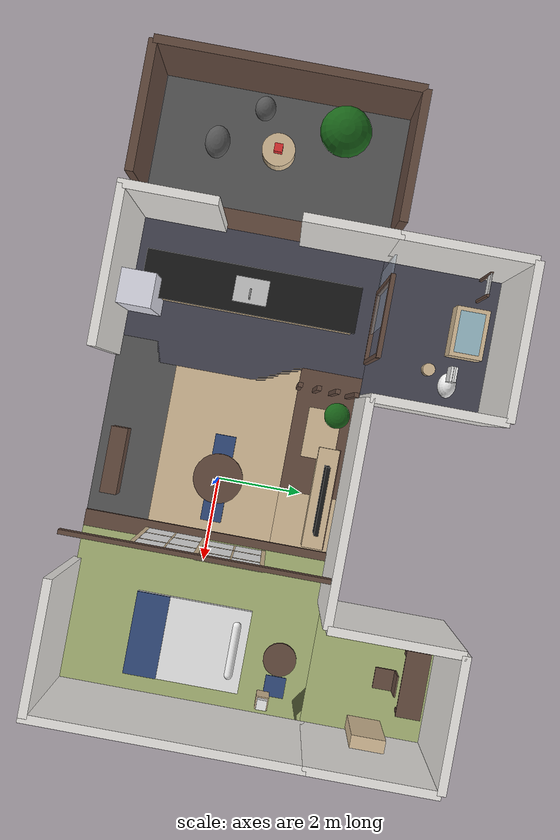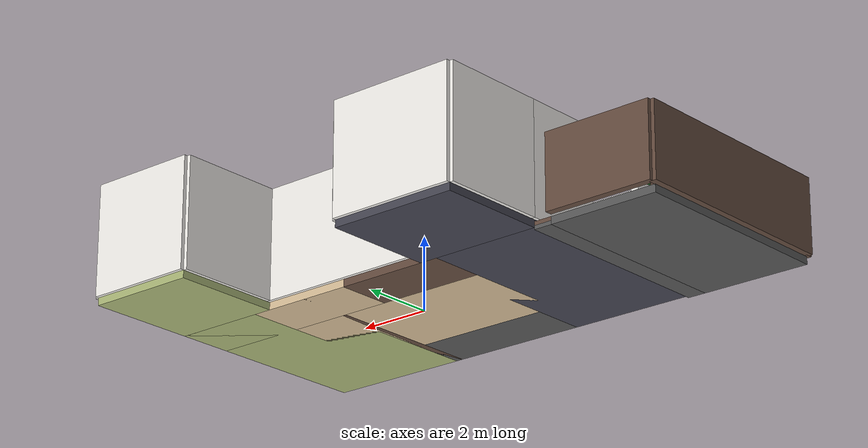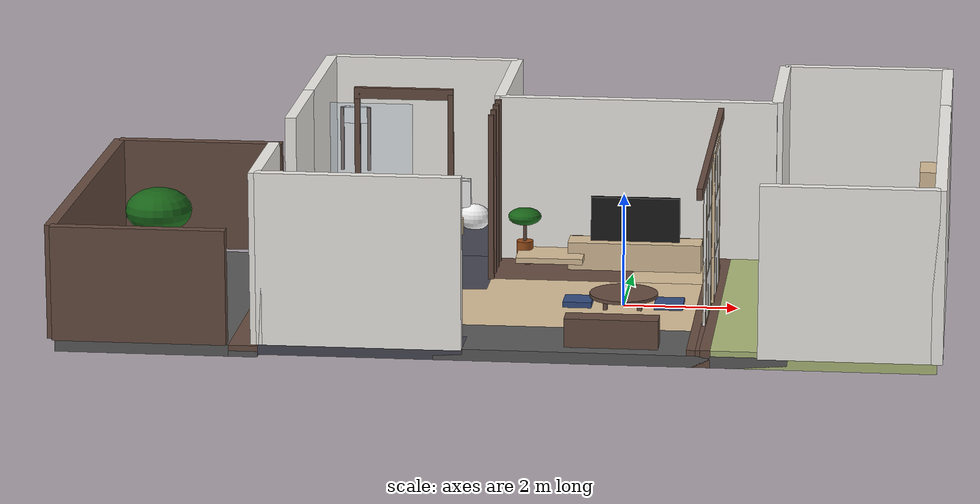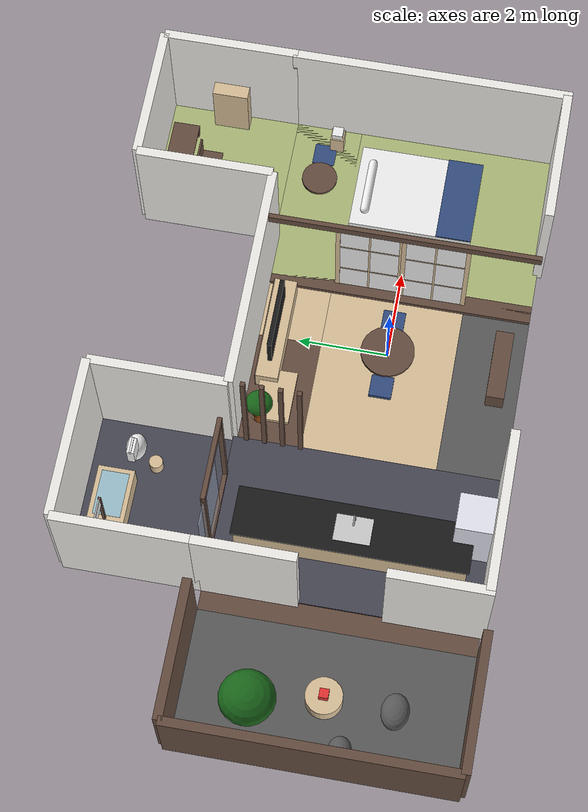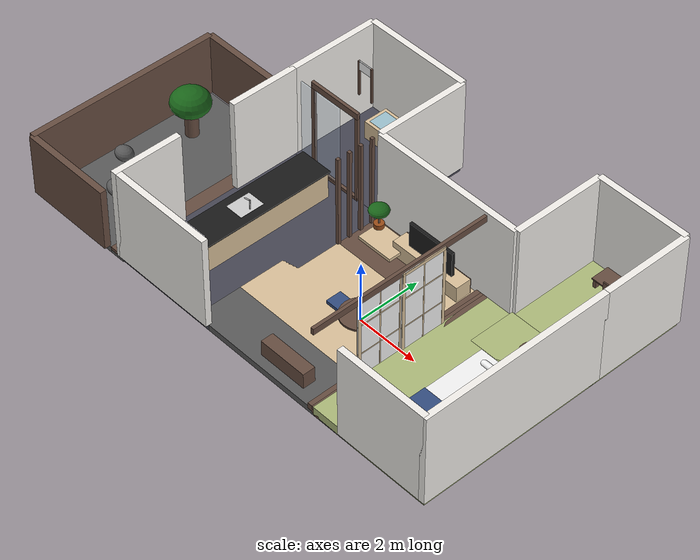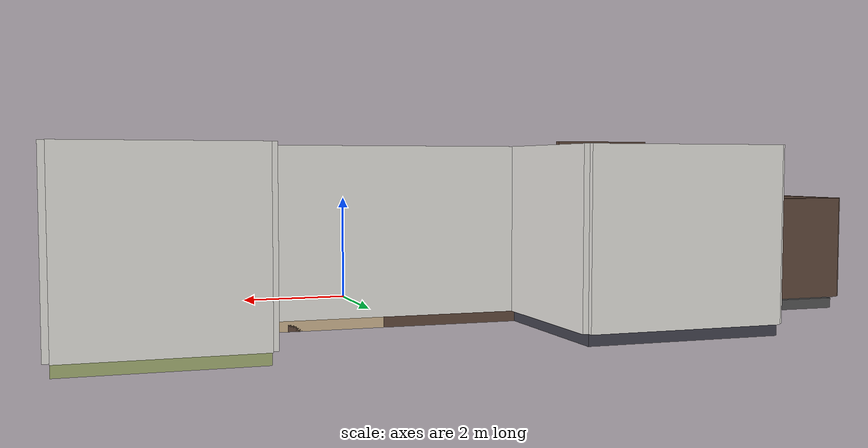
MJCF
<mujoco model="Japanese_Zen_Home">
  <!--
    Designed by: Trae AI
    Style: Modern Japanese (Zen)
    Rooms: Living Room, Kitchen, Bedroom
  -->

  <compiler angle="degree" coordinate="local" inertiafromgeom="true"/>

  <option timestep="0.005" gravity="0 0 -9.81" density="1.2"/>

  <visual>
    <global offwidth="1920" offheight="1080" azimuth="150" elevation="-20"/>
    <quality shadowsize="4096"/>
    <headlight active="0"/>
    <map fogstart="3" fogend="10" force="0.1" znear="0.1"/>
  </visual>

  <default>
    <geom condim="3" friction="0.7 0.1 0.1" solimp="0.9 0.95 0.001" solref="0.02 1"/>
  </default>

  <asset>
    <!-- Textures: Procedural generation for standalone capability -->
    <texture name="tex_sky" type="skybox" builtin="gradient" rgb1="0.8 0.9 1.0" rgb2="0.6 0.8 0.9" width="512" height="512"/>

    <!-- Wood Texture (Light Oak) -->
    <texture name="tex_wood_light" type="cube" builtin="flat" rgb1="0.85 0.75 0.6" width="512" height="512" mark="random" markrgb="0.8 0.7 0.55"/>
    <material name="mat_wood_light" texture="tex_wood_light" texrepeat="1 1" reflectance="0.3" specular="0.2"/>

    <!-- Wood Texture (Dark Walnut) -->
    <texture name="tex_wood_dark" type="cube" builtin="flat" rgb1="0.4 0.3 0.25" width="512" height="512" mark="cross" markrgb="0.35 0.25 0.2"/>
    <material name="mat_wood_dark" texture="tex_wood_dark" texrepeat="1 1" reflectance="0.2" specular="0.1"/>

    <!-- Tatami Texture -->
    <texture name="tex_tatami" type="2d" builtin="checker" rgb1="0.7 0.75 0.5" rgb2="0.65 0.7 0.45" width="512" height="512"/>
    <material name="mat_tatami" texture="tex_tatami" texrepeat="5 5" reflectance="0.1" specular="0.0"/>

    <!-- Wall Texture (Plaster) -->
    <texture name="tex_wall" type="2d" builtin="flat" rgb1="0.95 0.94 0.92" width="512" height="512"/>
    <material name="mat_wall" texture="tex_wall" reflectance="0.1" specular="0.05"/>

    <!-- Floor Tile (Kitchen) -->
    <texture name="tex_tile" type="2d" builtin="checker" rgb1="0.3 0.3 0.35" rgb2="0.25 0.25 0.3" width="512" height="512"/>
    <material name="mat_tile" texture="tex_tile" texrepeat="4 4" reflectance="0.4" specular="0.5"/>
    <texture name="tex_stone_entry" type="2d" builtin="checker" rgb1="0.4 0.4 0.4" rgb2="0.3 0.3 0.3" width="512" height="512"/>
    <material name="mat_stone_entry" texture="tex_stone_entry" texrepeat="4 4" reflectance="0.2" specular="0.1"/>

    <!-- Shoji Paper -->
    <material name="mat_shoji" rgba="0.95 0.95 0.95 0.9" reflectance="0.1" specular="0.1"/>

    <!-- Fabric (Blue) -->
    <material name="mat_fabric_blue" rgba="0.2 0.3 0.5 1" reflectance="0.05" specular="0.0"/>

    <!-- Fabric (White/Bed) -->
    <material name="mat_fabric_white" rgba="0.95 0.95 0.95 1" reflectance="0.1" specular="0.0"/>

    <!-- Plant Green -->
    <material name="mat_plant" rgba="0.1 0.4 0.1 1" reflectance="0.1" specular="0.2"/>
  </asset>

  <worldbody>
    <!-- Lighting -->
    <light mode="targetbodycom" target="living_center" directional="true" pos="-5 -5 10" diffuse="0.9 0.85 0.8" specular="0.2 0.2 0.2" castshadow="true"/>
    <light mode="fixed" pos="2 2 3" diffuse="0.4 0.4 0.3" attenuation="1 0 0"/>
    <light name="top_light" mode="targetbodycom" target="living_center" directional="true" pos="0 0 8" diffuse="0.8 0.8 0.8" specular="0.2 0.2 0.2" castshadow="true"/>

    <!-- ================= FLOOR PLAN ================= -->
    <!-- Total Area approx 10m x 8m -->

    <!-- Living Room Floor (Wood) - Center -->
    <geom name="floor_living" type="box" pos="0 0 -0.1" size="3 1.5 0.1" material="mat_wood_light"/>
    <body name="living_center" pos="0 0 0"/>
    <geom name="floor_entry" type="box" pos="0 -2.25 -0.1" size="3 0.75 0.1" material="mat_stone_entry"/>
    <!-- Dining & TV Area Connection -->
    <geom name="floor_dining" type="box" pos="-1.5 2.25 -0.1" size="1.5 0.75 0.1" material="mat_wood_dark"/>
    <geom name="floor_center_north" type="box" pos="1.5 2.25 -0.1" size="1.5 0.75 0.1" material="mat_wood_light"/>

    <!-- New Room: Bathroom Floor (North-West) -->
    <geom name="floor_bathroom" type="box" pos="-4.25 4.5 -0.1" size="1.75 1.5 0.1" material="mat_tile"/>

    <!-- New Room: Study Floor (North-East) -->
    <geom name="floor_study" type="box" pos="4 4.5 -0.05" size="1.5 1.5 0.15" material="mat_tatami"/>

    <!-- Tearoom (Small raised area) -->
    <geom name="floor_tearoom" type="box" pos="4 2.25 -0.05" size="1.5 0.75 0.15" material="mat_tatami"/>

    <!-- Kitchen Floor (Tile) - Extended Left -->
    <!-- Original: pos="-4 0 -0.1" size="1.5 3 0.1" (Range: -5.5 to -2.5) -->
    <!-- New: Extend left by 0.5m. New Left Edge: -6.0. Range: -6.0 to -2.5. Width: 3.5. Center: -4.25. Size: 1.75 -->
    <geom name="floor_kitchen" type="box" pos="-4.25 0 -0.1" size="1.75 3 0.1" material="mat_tile"/>

    <!-- Corridor (Veranda/Engawa) - Shifted Left and Lowered -->
    <!-- Left edge of kitchen is now -6.0. Corridor starts there. -->
    <!-- Width 0.5m. Center: -6.0 - 0.25 = -6.25. -->
    <!-- Lowered height: Kitchen top is 0. Corridor top should be slightly lower, say -0.05. -->
    <!-- Box height 0.05. Center Z = -0.05 - 0.05 = -0.1. Top surface at -0.05. -->
    <geom name="floor_corridor" type="box" pos="-6.25 0 -0.1" size="0.25 3 0.05" material="mat_wood_dark"/>
    <!-- Base under corridor (Ground) -->
    <!-- To fill the gap below the corridor to the ground level or create a step effect. -->
    <geom name="floor_corridor_base" type="box" pos="-6.25 0 -0.2" size="0.25 3 0.05" material="mat_stone_entry"/>

    <!-- Courtyard Floor - Shifted Left -->
    <!-- Start at corridor edge -6.5. -->
    <!-- Pos: -8.0, Size: 1.5 (Width 3.0, Range -6.5 to -9.5) -->
    <geom name="floor_courtyard" type="box" pos="-8.0 0 -0.15" size="1.5 3 0.1" material="mat_stone_entry"/>

    <!-- Bedroom Floor (Tatami Platform) - Right side, slightly raised -->
    <geom name="floor_bedroom" type="box" pos="3.5 0 -0.05" size="2 3 0.15" material="mat_tatami"/>
    <!-- Bedroom Step -->
    <geom name="bedroom_step" type="box" pos="1.5 0 -0.05" size="0.2 3 0.15" material="mat_wood_dark"/>

    <!-- ================= WALLS ================= -->
    <!-- Back Wall (Center Segment behind TV) -->
    <!-- This creates openings at the sides for the Bathroom (Left) and Study (Right) -->
    <geom name="wall_back_center" type="box" pos="0 3 1.5" size="2.5 0.1 1.5" material="mat_wall"/>

    <!-- Bathroom Walls (North-West Room) -->
    <geom name="wall_bath_back" type="box" pos="-4.25 6 1.5" size="1.75 0.1 1.5" material="mat_wall"/>
    <!-- Adjusted Left Wall position to match extended Kitchen -->
    <geom name="wall_bath_left" type="box" pos="-6.0 4.5 1.5" size="0.1 1.5 1.5" material="mat_wall"/>
    <geom name="wall_bath_right" type="box" pos="-2.5 4.5 1.5" size="0.1 1.5 1.5" material="mat_wall"/>

    <!-- Study Walls (North-East Room) -->
    <geom name="wall_study_back" type="box" pos="4 6 1.5" size="1.5 0.1 1.5" material="mat_wall"/>
    <geom name="wall_study_right" type="box" pos="5.5 4.5 1.5" size="0.1 1.5 1.5" material="mat_wall"/>
    <geom name="wall_study_left" type="box" pos="2.5 4.5 1.5" size="0.1 1.5 1.5" material="mat_wall"/>

    <!-- Front Wall (with opening for view) -->
    <geom name="wall_front_left" type="box" pos="-4.25 -3 1.5" size="1.75 0.1 1.5" material="mat_wall"/>
    <geom name="wall_front_right" type="box" pos="4 -3 1.5" size="1.5 0.1 1.5" material="mat_wall"/>
    <!-- Left Wall - Shifted Left -->
    <geom name="wall_left_south" type="box" pos="-6.0 -2 1.5" size="0.1 1.1 1.5" material="mat_wall"/>
    <geom name="wall_left_north" type="box" pos="-6.0 2 1.5" size="0.1 1.1 1.5" material="mat_wall"/>
    <!-- Right Wall -->
    <geom name="wall_right" type="box" pos="5.5 0 1.5" size="0.1 3.1 1.5" material="mat_wall"/>
    <!-- Courtyard Walls - Adjusted -->
    <geom name="wall_courtyard_back" type="box" pos="-8.0 3.1 1.0" size="1.5 0.1 1.0" material="mat_wood_dark"/>
    <geom name="wall_courtyard_front" type="box" pos="-8.0 -3.1 1.0" size="1.5 0.1 1.0" material="mat_wood_dark"/>
    <geom name="wall_courtyard_left" type="box" pos="-9.5 0 1.0" size="0.1 3.1 1.0" material="mat_wood_dark"/>

    <!-- Doorways / Openings -->
    <!-- Openings to Bathroom and Study are created by the gap between wall_back_center and the side walls -->

    <!-- ================= PARTITIONS ================= -->

    <!-- Shoji Screen (Divider between Living and Bedroom) -->
    <!-- Frame -->
    <body name="shoji_divider" pos="1.5 0 0">
        <!-- Top Track -->
        <geom type="box" pos="0 0 2.8" size="0.05 3 0.1" material="mat_wood_dark"/>
        <!-- Bottom Track -->
        <geom type="box" pos="0 0 0.05" size="0.05 3 0.05" material="mat_wood_dark"/>

        <!-- Sliding Door 1 (Fixed for visual) -->
        <body name="shoji_door_1" pos="0 -0.75 1.4">
            <geom type="box" size="0.02 0.75 1.4" material="mat_shoji"/>
            <geom type="box" size="0.03 0.75 0.05" pos="0 0 1.35" material="mat_wood_light"/> <!-- Top frame -->
            <geom type="box" size="0.03 0.75 0.05" pos="0 0 -1.35" material="mat_wood_light"/> <!-- Bottom frame -->
            <geom type="box" size="0.03 0.05 1.4" pos="0 0.7 0" material="mat_wood_light"/> <!-- Side frame -->
            <geom type="box" size="0.03 0.05 1.4" pos="0 -0.7 0" material="mat_wood_light"/> <!-- Side frame -->
            <!-- Grid lines -->
            <geom type="box" size="0.025 0.75 0.02" pos="0 0 0.5" material="mat_wood_light"/>
            <geom type="box" size="0.025 0.75 0.02" pos="0 0 -0.5" material="mat_wood_light"/>
            <geom type="box" size="0.025 0.02 1.4" pos="0 0 0" material="mat_wood_light"/>
        </body>

        <!-- Sliding Door 2 (Open) -->
        <body name="shoji_door_2" pos="0.05 0.7 1.4">
            <geom type="box" size="0.02 0.75 1.4" material="mat_shoji"/>
             <geom type="box" size="0.03 0.75 0.05" pos="0 0 1.35" material="mat_wood_light"/>
            <geom type="box" size="0.03 0.75 0.05" pos="0 0 -1.35" material="mat_wood_light"/>
            <geom type="box" size="0.03 0.05 1.4" pos="0 0.7 0" material="mat_wood_light"/>
            <geom type="box" size="0.03 0.05 1.4" pos="0 -0.7 0" material="mat_wood_light"/>
            <!-- Grid lines -->
            <geom type="box" size="0.025 0.75 0.02" pos="0 0 0.5" material="mat_wood_light"/>
            <geom type="box" size="0.025 0.75 0.02" pos="0 0 -0.5" material="mat_wood_light"/>
            <geom type="box" size="0.025 0.02 1.4" pos="0 0 0" material="mat_wood_light"/>
        </body>
    </body>

    <!-- Kitchen Divider (Vertical Slats) -->
    <body name="kitchen_divider" pos="-2.5 1.5 0">
        <geom type="box" pos="0 0 1.5" size="0.05 0.05 1.5" material="mat_wood_dark"/>
        <geom type="box" pos="0 0.4 1.5" size="0.05 0.05 1.5" material="mat_wood_dark"/>
        <geom type="box" pos="0 0.8 1.5" size="0.05 0.05 1.5" material="mat_wood_dark"/>
        <geom type="box" pos="0 1.2 1.5" size="0.05 0.05 1.5" material="mat_wood_dark"/>
    </body>

    <!-- ================= FURNITURE: LIVING ROOM ================= -->

    <!-- Chabudai (Low Table) -->
    <body name="table" pos="0 0 0.2">
        <!-- Table Top -->
        <geom type="cylinder" size="0.6 0.03" material="mat_wood_dark"/>
        <!-- Legs -->
        <geom type="box" pos="0.3 0.3 -0.1" size="0.04 0.04 0.1" material="mat_wood_dark"/>
        <geom type="box" pos="-0.3 0.3 -0.1" size="0.04 0.04 0.1" material="mat_wood_dark"/>
        <geom type="box" pos="0.3 -0.3 -0.1" size="0.04 0.04 0.1" material="mat_wood_dark"/>
        <geom type="box" pos="-0.3 -0.3 -0.1" size="0.04 0.04 0.1" material="mat_wood_dark"/>
    </body>

    <!-- Zabuton (Cushions) -->
    <body name="cushion_1" pos="0.8 0 0.05">
        <geom type="box" size="0.25 0.25 0.05" material="mat_fabric_blue" rgba="0.2 0.3 0.5 1"/>
    </body>
    <body name="cushion_2" pos="-0.8 0 0.05">
        <geom type="box" size="0.25 0.25 0.05" material="mat_fabric_blue" rgba="0.2 0.3 0.5 1"/>
    </body>

    <!-- TV Stand / Low Cabinet -->
    <body name="cabinet" pos="0 2.5 0.25">
        <geom type="box" size="1.2 0.25 0.25" material="mat_wood_light"/>
        <geom type="box" pos="0 0.26 0" size="1.2 0.01 0.25" material="mat_wood_dark"/> <!-- Top surface -->

        <!-- TV (Black box) -->
        <geom type="box" pos="0 0 0.6" size="0.8 0.05 0.45" rgba="0.1 0.1 0.1 1" material="mat_wood_dark"/>
    </body>

    <body name="plant" pos="-2 2.5 0.3">
        <geom type="cylinder" size="0.15 0.15" rgba="0.6 0.3 0.1 1"/>
        <geom type="capsule" fromto="0 0 0.1 0 0 0.6" size="0.03" material="mat_wood_dark"/>
        <geom type="ellipsoid" pos="0 0 0.6" size="0.3 0.3 0.15" material="mat_plant"/>
    </body>
    <body name="courtyard_tree" pos="-8.5 1.5 0.3">
        <geom type="cylinder" size="0.2 0.4" material="mat_wood_dark"/>
        <geom type="ellipsoid" pos="0 0 0.8" size="0.6 0.6 0.4" material="mat_plant"/>
    </body>
    <body name="courtyard_rock_1" pos="-8.0 -1.5 0.1">
        <geom type="ellipsoid" size="0.4 0.3 0.2" material="mat_stone_entry"/>
    </body>
    <body name="courtyard_rock_2" pos="-9.0 -0.5 0.1">
        <geom type="ellipsoid" size="0.3 0.25 0.2" material="mat_stone_entry"/>
    </body>

    <!-- Courtyard Furniture -->
    <body name="courtyard_table" pos="-8.0 0 0.2">
        <!-- Simple Stone/Wood Table -->
        <geom type="cylinder" size="0.4 0.2" material="mat_wood_light"/>
    </body>

    <!-- Interactive Block (with free joint) -->
    <body name="toy_block" pos="-8.0 0 0.5">
        <freejoint/>
        <geom type="box" size="0.1 0.1 0.1" rgba="0.9 0.2 0.2 1" mass="1"/>
    </body>

    <body name="entry_cabinet" pos="0 -2.5 0.25">
        <geom type="box" size="0.8 0.2 0.25" material="mat_wood_dark"/>
    </body>

    <body name="dining_table" pos="-1.5 2.25 0.25">
        <geom type="box" size="0.6 0.4 0.05" material="mat_wood_light"/>
        <geom type="box" pos="0.45 0.3 -0.2" size="0.05 0.05 0.2" material="mat_wood_dark"/>
        <geom type="box" pos="-0.45 0.3 -0.2" size="0.05 0.05 0.2" material="mat_wood_dark"/>
    </body>

    <body name="tearoom_table" pos="4 2.25 0.25">
        <geom type="cylinder" size="0.4 0.03" material="mat_wood_dark"/>
    </body>

    <body name="tearoom_cushion" pos="4.7 2.25 0.07">
        <geom type="box" size="0.25 0.25 0.05" material="mat_fabric_blue"/>
    </body>

    <!-- ================= FURNITURE: KITCHEN ================= -->
    <body name="kitchen_counter" pos="-4.5 0 0.45">
        <!-- Main Counter -->
        <geom type="box" size="0.5 2.5 0.45" material="mat_wood_light"/>
        <!-- Countertop (Black Granite style) -->
        <geom type="box" pos="0 0 0.46" size="0.55 2.55 0.02" rgba="0.1 0.1 0.1 1" material="mat_tile"/>

        <!-- Sink (Hollow approximation) -->
        <geom type="box" pos="0 0 0.48" size="0.3 0.4 0.01" rgba="0.8 0.8 0.8 1"/>

        <!-- Faucet -->
        <geom type="capsule" fromto="0.2 0 0.5 0.2 0 0.8" size="0.02" rgba="0.7 0.7 0.7 1"/>
        <geom type="capsule" fromto="0.2 0 0.8 0 0 0.75" size="0.02" rgba="0.7 0.7 0.7 1"/>
    </body>

    <body name="fridge" pos="-4 -2.5 0.9">
        <geom type="box" size="0.4 0.4 0.9" rgba="0.9 0.9 0.95 1" material="mat_wall"/>
    </body>

    <!-- ================= FURNITURE: BEDROOM ================= -->
    <body name="futon_bed" pos="4 0 0.15">
        <!-- Mattress -->
        <geom type="box" size="1.0 1.4 0.08" material="mat_fabric_white"/>
        <!-- Pillow -->
        <geom type="capsule" fromto="-0.6 1.1 0.08 0.6 1.1 0.08" size="0.1" material="mat_fabric_white"/>
        <!-- Blanket (Folded at end) -->
        <geom type="box" pos="0 -1.0 0.09" size="1.0 0.4 0.02" material="mat_fabric_blue"/>
    </body>

    <body name="bedroom_lamp" pos="5 2 0.3">
         <!-- Stand -->
         <geom type="box" size="0.15 0.15 0.3" material="mat_wood_light"/>
         <!-- Paper shade -->
         <geom type="box" pos="0 0 0.2" size="0.12 0.12 0.25" material="mat_shoji"/>
         <!-- Light source inside lamp -->
         <light mode="fixed" pos="0 0 0" diffuse="0.8 0.7 0.4" attenuation="2 0 0"/>
    </body>

    <!-- ================= FURNITURE: BATHROOM ================= -->
    <body name="bathtub" pos="-4.5 5.25 0.3">
        <!-- Japanese Cypress Bath (Hinoki) -->
        <geom type="box" size="0.6 0.4 0.3" material="mat_wood_light"/>
        <geom type="box" pos="0 0 0.25" size="0.5 0.3 0.06" rgba="0.6 0.8 0.9 0.8"/> <!-- Water -->
    </body>
    <body name="bath_stool" pos="-3.5 4.5 0.15">
        <geom type="cylinder" size="0.15 0.15" material="mat_wood_light"/>
    </body>
    <body name="towel_rack" pos="-5.7 5.2 1.0">
        <geom type="box" pos="0 0 0.6" size="0.03 0.03 0.6" material="mat_wood_dark"/>
        <geom type="box" pos="0.5 0 0.6" size="0.03 0.03 0.6" material="mat_wood_dark"/>
        <geom type="capsule" fromto="0.05 0 1.2 0.45 0 1.2" size="0.02" rgba="0.8 0.8 0.8 1"/>
        <geom type="box" pos="0.25 0 1.05" size="0.25 0.02 0.15" material="mat_fabric_white"/>
    </body>
    <body name="toilet" pos="-3.2 5.0 0.2">
        <geom type="ellipsoid" size="0.3 0.22 0.25" rgba="0.95 0.95 0.95 1"/>
        <geom type="box" pos="-0.25 0 0.45" size="0.18 0.08 0.25" rgba="0.95 0.95 0.95 1"/>
        <geom type="box" pos="-0.25 0 0.7" size="0.18 0.02 0.04" rgba="0.95 0.95 0.95 1"/>
    </body>
    <body name="bath_kitchen_partition" pos="-4.25 3.0 0">
        <geom type="box" pos="-0.85 0 1.5" size="0.05 0.05 1.5" material="mat_wood_dark"/>
        <geom type="box" pos="0.85 0 1.5" size="0.05 0.05 1.5" material="mat_wood_dark"/>
        <geom type="box" pos="0 0 3.0" size="0.9 0.05 0.1" material="mat_wood_dark"/>
        <geom type="box" pos="0 0 0.05" size="0.9 0.05 0.05" material="mat_wood_dark"/>
        <body name="bath_glass_door" pos="-0.6 0 0">
            <joint type="slide" axis="1 0 0" range="0 1.2" limited="true" damping="1"/>
            <geom type="box" pos="0 0 1.4" size="0.75 0.02 1.4" rgba="0.8 0.9 1 0.3"/>
        </body>
    </body>

    <!-- ================= FURNITURE: STUDY ================= -->
    <body name="study_desk" pos="4 5.5 0.35">
        <geom type="box" size="0.8 0.3 0.02" material="mat_wood_dark"/> <!-- Desktop -->
        <geom type="box" pos="-0.7 0 -0.17" size="0.05 0.3 0.17" material="mat_wood_dark"/> <!-- Leg L -->
        <geom type="box" pos="0.7 0 -0.17" size="0.05 0.3 0.17" material="mat_wood_dark"/> <!-- Leg R -->
    </body>
    <body name="study_chair" pos="4 4.8 0.25">
        <geom type="box" size="0.25 0.25 0.02" material="mat_wood_dark"/> <!-- Seat -->
        <geom type="box" pos="0 0.23 0.25" size="0.25 0.02 0.25" material="mat_wood_dark"/> <!-- Back -->
        <geom type="box" pos="-0.2 0 -0.12" size="0.02 0.2 0.12" material="mat_wood_dark"/> <!-- Legs -->
        <geom type="box" pos="0.2 0 -0.12" size="0.02 0.2 0.12" material="mat_wood_dark"/>
    </body>
    <body name="bookshelf" pos="5.2 4.5 0.75">
        <geom type="box" size="0.15 0.4 0.75" material="mat_wood_light"/>
        <!-- Books (Abstract) -->
        <geom type="box" pos="-0.05 0 0.2" size="0.08 0.35 0.1" rgba="0.8 0.2 0.2 1"/>
        <geom type="box" pos="-0.05 0 -0.2" size="0.08 0.35 0.1" rgba="0.2 0.2 0.8 1"/>
    </body>

  </worldbody>
</mujoco>
